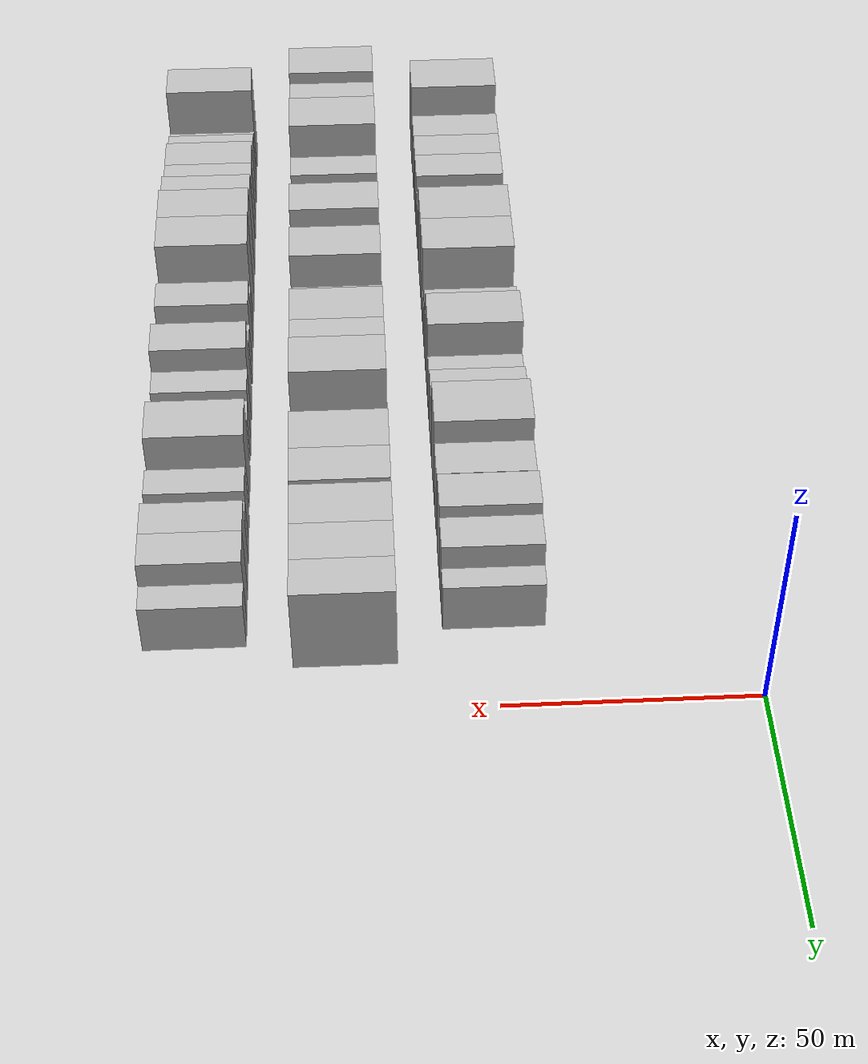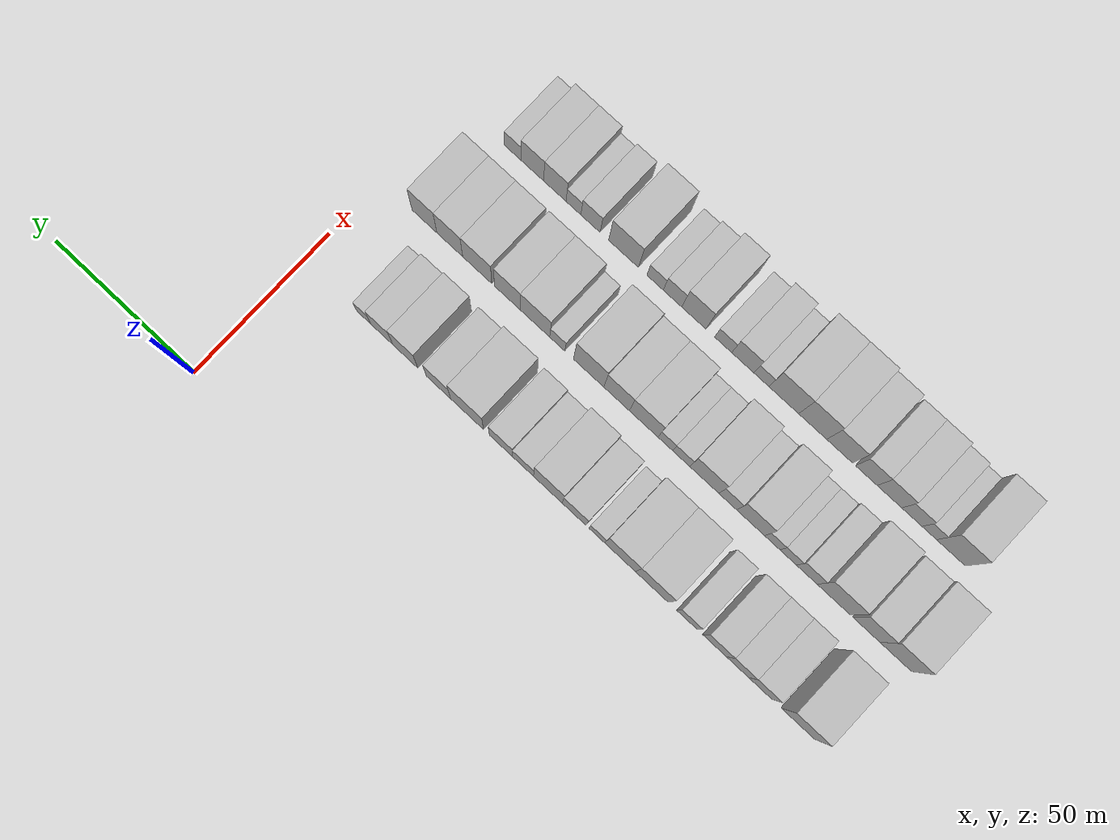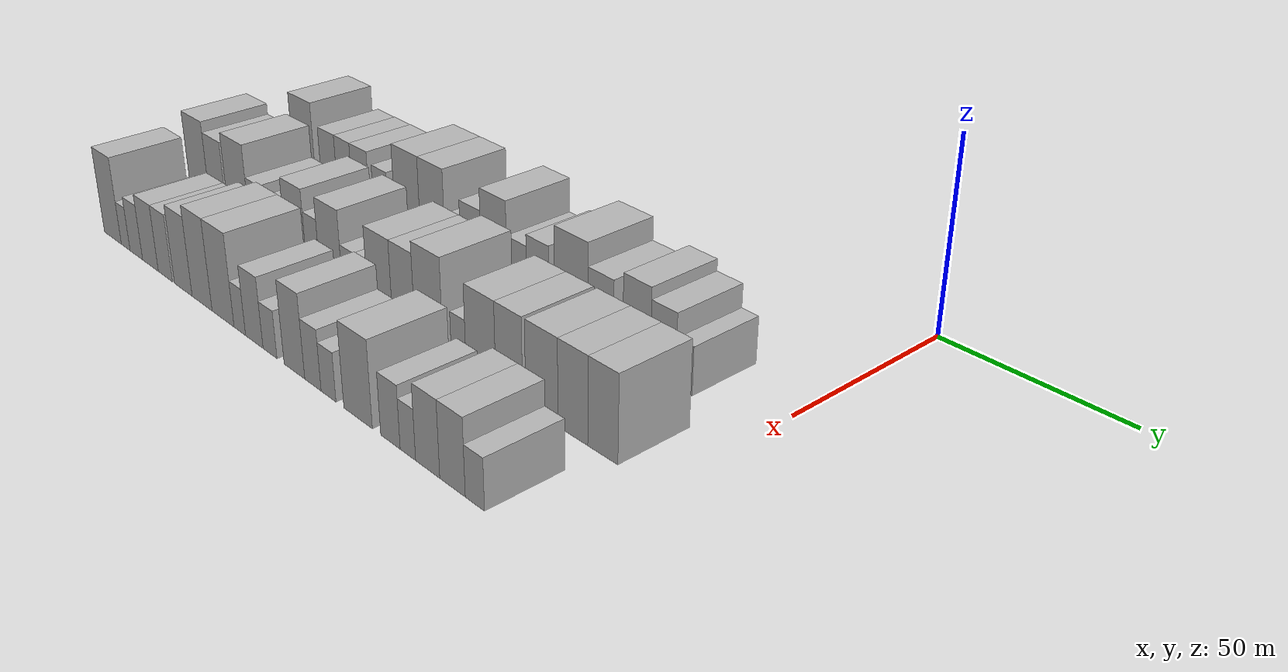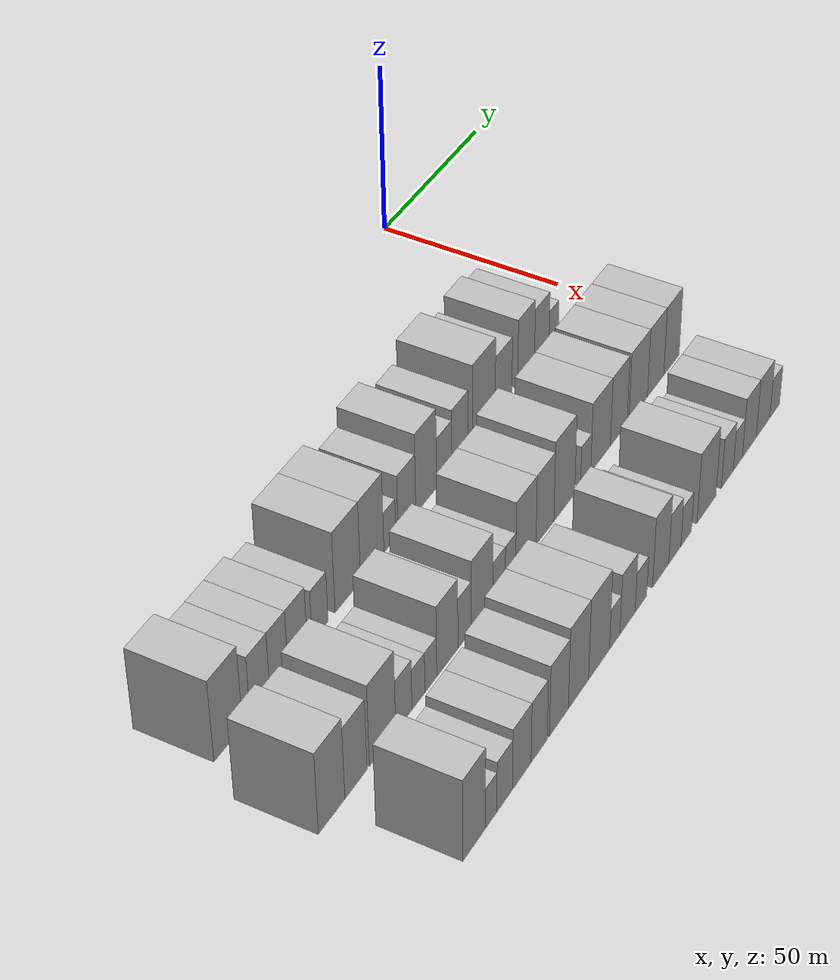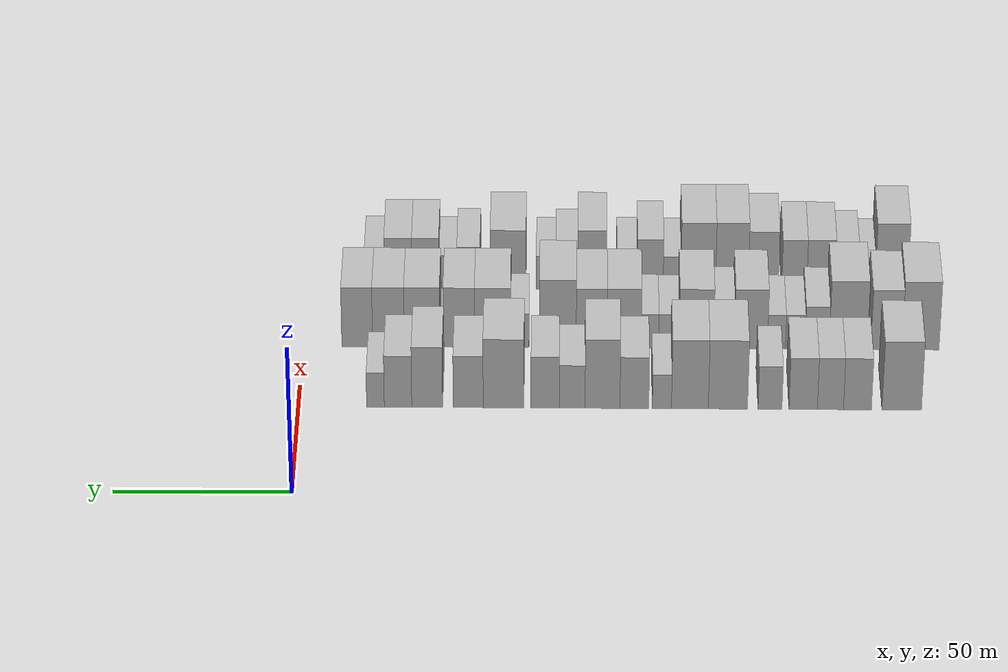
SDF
<sdf version="1.6">
 <world name="default">
  <model name="building_19">
   <static>1</static>
   <pose>50.0000 -171.7092 0 0.000000 0.000000 0.000000</pose>
   <link name="link">
    <pose>0 0 12.00 0 0 0</pose>
    <collision name="collision"><geometry><box><size>20.0000 11.2336 24.0000</size></box></geometry></collision>
    <visual name="visual">
     <cast_shadows>0</cast_shadows>
     <geometry><box><size>20.0000 11.2336 24.0000</size></box></geometry>
     <material>
      <script>
       <uri>model://HANNAS_wall/materials/scripts</uri>
       <uri>model://HANNAS_wall/materials/textures</uri>
       <name>vrc/HANNAS_wall</name>
      </script>
     </material>
    </visual>
   </link>
  </model>
  <model name="building_20">
   <static>1</static>
   <pose>50.0000 -159.1138 0 0.000000 0.000000 0.000000</pose>
   <link name="link">
    <pose>0 0 9.00 0 0 0</pose>
    <collision name="collision"><geometry><box><size>20.0000 7.9572 18.0000</size></box></geometry></collision>
    <visual name="visual">
     <cast_shadows>0</cast_shadows>
     <geometry><box><size>20.0000 7.9572 18.0000</size></box></geometry>
     <material>
      <script>
       <uri>model://HANNAS_wall/materials/scripts</uri>
       <uri>model://HANNAS_wall/materials/textures</uri>
       <name>vrc/HANNAS_wall</name>
      </script>
     </material>
    </visual>
   </link>
  </model>
  <model name="building_21">
   <static>1</static>
   <pose>50.0000 -151.4212 0 0.000000 0.000000 0.000000</pose>
   <link name="link">
    <pose>0 0 9.00 0 0 0</pose>
    <collision name="collision"><geometry><box><size>20.0000 7.4280 18.0000</size></box></geometry></collision>
    <visual name="visual">
     <cast_shadows>0</cast_shadows>
     <geometry><box><size>20.0000 7.4280 18.0000</size></box></geometry>
     <material>
      <script>
       <uri>model://HANNAS_wall/materials/scripts</uri>
       <uri>model://HANNAS_wall/materials/textures</uri>
       <name>vrc/HANNAS_wall</name>
      </script>
     </material>
    </visual>
   </link>
  </model>
  <model name="building_22">
   <static>1</static>
   <pose>50.0000 -143.6685 0 0.000000 0.000000 0.000000</pose>
   <link name="link">
    <pose>0 0 9.00 0 0 0</pose>
    <collision name="collision"><geometry><box><size>20.0000 8.0774 18.0000</size></box></geometry></collision>
    <visual name="visual">
     <cast_shadows>0</cast_shadows>
     <geometry><box><size>20.0000 8.0774 18.0000</size></box></geometry>
     <material>
      <script>
       <uri>model://HANNAS_wall/materials/scripts</uri>
       <uri>model://HANNAS_wall/materials/textures</uri>
       <name>vrc/HANNAS_wall</name>
      </script>
     </material>
    </visual>
   </link>
  </model>
  <model name="building_23">
   <static>1</static>
   <pose>50.0000 -134.2291 0 0.000000 0.000000 0.000000</pose>
   <link name="link">
    <pose>0 0 7.50 0 0 0</pose>
    <collision name="collision"><geometry><box><size>20.0000 6.8014 15.0000</size></box></geometry></collision>
    <visual name="visual">
     <cast_shadows>0</cast_shadows>
     <geometry><box><size>20.0000 6.8014 15.0000</size></box></geometry>
     <material>
      <script>
       <uri>model://HANNAS_wall/materials/scripts</uri>
       <uri>model://HANNAS_wall/materials/textures</uri>
       <name>vrc/HANNAS_wall</name>
      </script>
     </material>
    </visual>
   </link>
  </model>
  <model name="building_24">
   <static>1</static>
   <pose>50.0000 -122.2531 0 0.000000 0.000000 0.000000</pose>
   <link name="link">
    <pose>0 0 12.00 0 0 0</pose>
    <collision name="collision"><geometry><box><size>20.0000 11.1506 24.0000</size></box></geometry></collision>
    <visual name="visual">
     <cast_shadows>0</cast_shadows>
     <geometry><box><size>20.0000 11.1506 24.0000</size></box></geometry>
     <material>
      <script>
       <uri>model://HANNAS_wall/materials/scripts</uri>
       <uri>model://HANNAS_wall/materials/textures</uri>
       <name>vrc/HANNAS_wall</name>
      </script>
     </material>
    </visual>
   </link>
  </model>
  <model name="building_25">
   <static>1</static>
   <pose>50.0000 -111.4234 0 0.000000 0.000000 0.000000</pose>
   <link name="link">
    <pose>0 0 12.00 0 0 0</pose>
    <collision name="collision"><geometry><box><size>20.0000 10.5088 24.0000</size></box></geometry></collision>
    <visual name="visual">
     <cast_shadows>0</cast_shadows>
     <geometry><box><size>20.0000 10.5088 24.0000</size></box></geometry>
     <material>
      <script>
       <uri>model://HANNAS_wall/materials/scripts</uri>
       <uri>model://HANNAS_wall/materials/textures</uri>
       <name>vrc/HANNAS_wall</name>
      </script>
     </material>
    </visual>
   </link>
  </model>
  <model name="building_26">
   <static>1</static>
   <pose>50.0000 -103.4471 0 0.000000 0.000000 0.000000</pose>
   <link name="link">
    <pose>0 0 6.00 0 0 0</pose>
    <collision name="collision"><geometry><box><size>20.0000 5.4438 12.0000</size></box></geometry></collision>
    <visual name="visual">
     <cast_shadows>0</cast_shadows>
     <geometry><box><size>20.0000 5.4438 12.0000</size></box></geometry>
     <material>
      <script>
       <uri>model://HANNAS_wall/materials/scripts</uri>
       <uri>model://HANNAS_wall/materials/textures</uri>
       <name>vrc/HANNAS_wall</name>
      </script>
     </material>
    </visual>
   </link>
  </model>
  <model name="building_27">
   <static>1</static>
   <pose>50.0000 -95.6076 0 0.000000 0.000000 0.000000</pose>
   <link name="link">
    <pose>0 0 9.00 0 0 0</pose>
    <collision name="collision"><geometry><box><size>20.0000 8.2350 18.0000</size></box></geometry></collision>
    <visual name="visual">
     <cast_shadows>0</cast_shadows>
     <geometry><box><size>20.0000 8.2350 18.0000</size></box></geometry>
     <material>
      <script>
       <uri>model://HANNAS_wall/materials/scripts</uri>
       <uri>model://HANNAS_wall/materials/textures</uri>
       <name>vrc/HANNAS_wall</name>
      </script>
     </material>
    </visual>
   </link>
  </model>
  <model name="building_28">
   <static>1</static>
   <pose>50.0000 -86.5173 0 0.000000 0.000000 0.000000</pose>
   <link name="link">
    <pose>0 0 12.00 0 0 0</pose>
    <collision name="collision"><geometry><box><size>20.0000 9.9456 24.0000</size></box></geometry></collision>
    <visual name="visual">
     <cast_shadows>0</cast_shadows>
     <geometry><box><size>20.0000 9.9456 24.0000</size></box></geometry>
     <material>
      <script>
       <uri>model://HANNAS_wall/materials/scripts</uri>
       <uri>model://HANNAS_wall/materials/textures</uri>
       <name>vrc/HANNAS_wall</name>
      </script>
     </material>
    </visual>
   </link>
  </model>
  <model name="building_29">
   <static>1</static>
   <pose>50.0000 -77.8846 0 0.000000 0.000000 0.000000</pose>
   <link name="link">
    <pose>0 0 7.50 0 0 0</pose>
    <collision name="collision"><geometry><box><size>20.0000 7.3198 15.0000</size></box></geometry></collision>
    <visual name="visual">
     <cast_shadows>0</cast_shadows>
     <geometry><box><size>20.0000 7.3198 15.0000</size></box></geometry>
     <material>
      <script>
       <uri>model://HANNAS_wall/materials/scripts</uri>
       <uri>model://HANNAS_wall/materials/textures</uri>
       <name>vrc/HANNAS_wall</name>
      </script>
     </material>
    </visual>
   </link>
  </model>
  <model name="building_30">
   <static>1</static>
   <pose>50.0000 -70.1955 0 0.000000 0.000000 0.000000</pose>
   <link name="link">
    <pose>0 0 9.00 0 0 0</pose>
    <collision name="collision"><geometry><box><size>20.0000 8.0583 18.0000</size></box></geometry></collision>
    <visual name="visual">
     <cast_shadows>0</cast_shadows>
     <geometry><box><size>20.0000 8.0583 18.0000</size></box></geometry>
     <material>
      <script>
       <uri>model://HANNAS_wall/materials/scripts</uri>
       <uri>model://HANNAS_wall/materials/textures</uri>
       <name>vrc/HANNAS_wall</name>
      </script>
     </material>
    </visual>
   </link>
  </model>
  <model name="building_31">
   <static>1</static>
   <pose>50.0000 -58.3696 0 0.000000 0.000000 0.000000</pose>
   <link name="link">
    <pose>0 0 12.00 0 0 0</pose>
    <collision name="collision"><geometry><box><size>20.0000 11.5935 24.0000</size></box></geometry></collision>
    <visual name="visual">
     <cast_shadows>0</cast_shadows>
     <geometry><box><size>20.0000 11.5935 24.0000</size></box></geometry>
     <material>
      <script>
       <uri>model://HANNAS_wall/materials/scripts</uri>
       <uri>model://HANNAS_wall/materials/textures</uri>
       <name>vrc/HANNAS_wall</name>
      </script>
     </material>
    </visual>
   </link>
  </model>
  <model name="building_32">
   <static>1</static>
   <pose>50.0000 -48.3083 0 0.000000 0.000000 0.000000</pose>
   <link name="link">
    <pose>0 0 9.00 0 0 0</pose>
    <collision name="collision"><geometry><box><size>20.0000 8.5291 18.0000</size></box></geometry></collision>
    <visual name="visual">
     <cast_shadows>0</cast_shadows>
     <geometry><box><size>20.0000 8.5291 18.0000</size></box></geometry>
     <material>
      <script>
       <uri>model://HANNAS_wall/materials/scripts</uri>
       <uri>model://HANNAS_wall/materials/textures</uri>
       <name>vrc/HANNAS_wall</name>
      </script>
     </material>
    </visual>
   </link>
  </model>
  <model name="building_33">
   <static>1</static>
   <pose>50.0000 -36.6462 0 0.000000 0.000000 0.000000</pose>
   <link name="link">
    <pose>0 0 10.50 0 0 0</pose>
    <collision name="collision"><geometry><box><size>20.0000 8.7952 21.0000</size></box></geometry></collision>
    <visual name="visual">
     <cast_shadows>0</cast_shadows>
     <geometry><box><size>20.0000 8.7952 21.0000</size></box></geometry>
     <material>
      <script>
       <uri>model://HANNAS_wall/materials/scripts</uri>
       <uri>model://HANNAS_wall/materials/textures</uri>
       <name>vrc/HANNAS_wall</name>
      </script>
     </material>
    </visual>
   </link>
  </model>
  <model name="building_34">
   <static>1</static>
   <pose>50.0000 -28.3335 0 0.000000 0.000000 0.000000</pose>
   <link name="link">
    <pose>0 0 9.00 0 0 0</pose>
    <collision name="collision"><geometry><box><size>20.0000 7.8303 18.0000</size></box></geometry></collision>
    <visual name="visual">
     <cast_shadows>0</cast_shadows>
     <geometry><box><size>20.0000 7.8303 18.0000</size></box></geometry>
     <material>
      <script>
       <uri>model://HANNAS_wall/materials/scripts</uri>
       <uri>model://HANNAS_wall/materials/textures</uri>
       <name>vrc/HANNAS_wall</name>
      </script>
     </material>
    </visual>
   </link>
  </model>
  <model name="building_35">
   <static>1</static>
   <pose>50.0000 -21.9060 0 0.000000 0.000000 0.000000</pose>
   <link name="link">
    <pose>0 0 6.00 0 0 0</pose>
    <collision name="collision"><geometry><box><size>20.0000 5.0245 12.0000</size></box></geometry></collision>
    <visual name="visual">
     <cast_shadows>0</cast_shadows>
     <geometry><box><size>20.0000 5.0245 12.0000</size></box></geometry>
     <material>
      <script>
       <uri>model://HANNAS_wall/materials/scripts</uri>
       <uri>model://HANNAS_wall/materials/textures</uri>
       <name>vrc/HANNAS_wall</name>
      </script>
     </material>
    </visual>
   </link>
  </model>
  <model name="building_93">
   <static>1</static>
   <pose>79.0000 -178.6036 0 0.000000 0.000000 0.000000</pose>
   <link name="link">
    <pose>0 0 12.00 0 0 0</pose>
    <collision name="collision"><geometry><box><size>20.0000 10.6331 24.0000</size></box></geometry></collision>
    <visual name="visual">
     <cast_shadows>0</cast_shadows>
     <geometry><box><size>20.0000 10.6331 24.0000</size></box></geometry>
     <material>
      <script>
       <uri>model://HANNAS_wall/materials/scripts</uri>
       <uri>model://HANNAS_wall/materials/textures</uri>
       <name>vrc/HANNAS_wall</name>
      </script>
     </material>
    </visual>
   </link>
  </model>
  <model name="building_94">
   <static>1</static>
   <pose>79.0000 -168.7623 0 0.000000 0.000000 0.000000</pose>
   <link name="link">
    <pose>0 0 10.50 0 0 0</pose>
    <collision name="collision"><geometry><box><size>20.0000 9.0495 21.0000</size></box></geometry></collision>
    <visual name="visual">
     <cast_shadows>0</cast_shadows>
     <geometry><box><size>20.0000 9.0495 21.0000</size></box></geometry>
     <material>
      <script>
       <uri>model://HANNAS_wall/materials/scripts</uri>
       <uri>model://HANNAS_wall/materials/textures</uri>
       <name>vrc/HANNAS_wall</name>
      </script>
     </material>
    </visual>
   </link>
  </model>
  <model name="building_95">
   <static>1</static>
   <pose>79.0000 -157.7104 0 0.000000 0.000000 0.000000</pose>
   <link name="link">
    <pose>0 0 12.00 0 0 0</pose>
    <collision name="collision"><geometry><box><size>20.0000 11.0544 24.0000</size></box></geometry></collision>
    <visual name="visual">
     <cast_shadows>0</cast_shadows>
     <geometry><box><size>20.0000 11.0544 24.0000</size></box></geometry>
     <material>
      <script>
       <uri>model://HANNAS_wall/materials/scripts</uri>
       <uri>model://HANNAS_wall/materials/textures</uri>
       <name>vrc/HANNAS_wall</name>
      </script>
     </material>
    </visual>
   </link>
  </model>
  <model name="building_96">
   <static>1</static>
   <pose>79.0000 -148.6943 0 0.000000 0.000000 0.000000</pose>
   <link name="link">
    <pose>0 0 7.50 0 0 0</pose>
    <collision name="collision"><geometry><box><size>20.0000 6.9778 15.0000</size></box></geometry></collision>
    <visual name="visual">
     <cast_shadows>0</cast_shadows>
     <geometry><box><size>20.0000 6.9778 15.0000</size></box></geometry>
     <material>
      <script>
       <uri>model://HANNAS_wall/materials/scripts</uri>
       <uri>model://HANNAS_wall/materials/textures</uri>
       <name>vrc/HANNAS_wall</name>
      </script>
     </material>
    </visual>
   </link>
  </model>
  <model name="building_97">
   <static>1</static>
   <pose>79.0000 -142.3757 0 0.000000 0.000000 0.000000</pose>
   <link name="link">
    <pose>0 0 6.00 0 0 0</pose>
    <collision name="collision"><geometry><box><size>20.0000 5.6594 12.0000</size></box></geometry></collision>
    <visual name="visual">
     <cast_shadows>0</cast_shadows>
     <geometry><box><size>20.0000 5.6594 12.0000</size></box></geometry>
     <material>
      <script>
       <uri>model://HANNAS_wall/materials/scripts</uri>
       <uri>model://HANNAS_wall/materials/textures</uri>
       <name>vrc/HANNAS_wall</name>
      </script>
     </material>
    </visual>
   </link>
  </model>
  <model name="building_98">
   <static>1</static>
   <pose>79.0000 -136.9511 0 0.000000 0.000000 0.000000</pose>
   <link name="link">
    <pose>0 0 6.00 0 0 0</pose>
    <collision name="collision"><geometry><box><size>20.0000 5.1898 12.0000</size></box></geometry></collision>
    <visual name="visual">
     <cast_shadows>0</cast_shadows>
     <geometry><box><size>20.0000 5.1898 12.0000</size></box></geometry>
     <material>
      <script>
       <uri>model://HANNAS_wall/materials/scripts</uri>
       <uri>model://HANNAS_wall/materials/textures</uri>
       <name>vrc/HANNAS_wall</name>
      </script>
     </material>
    </visual>
   </link>
  </model>
  <model name="building_99">
   <static>1</static>
   <pose>79.0000 -129.5886 0 0.000000 0.000000 0.000000</pose>
   <link name="link">
    <pose>0 0 10.50 0 0 0</pose>
    <collision name="collision"><geometry><box><size>20.0000 9.5352 21.0000</size></box></geometry></collision>
    <visual name="visual">
     <cast_shadows>0</cast_shadows>
     <geometry><box><size>20.0000 9.5352 21.0000</size></box></geometry>
     <material>
      <script>
       <uri>model://HANNAS_wall/materials/scripts</uri>
       <uri>model://HANNAS_wall/materials/textures</uri>
       <name>vrc/HANNAS_wall</name>
      </script>
     </material>
    </visual>
   </link>
  </model>
  <model name="building_100">
   <static>1</static>
   <pose>79.0000 -121.7879 0 0.000000 0.000000 0.000000</pose>
   <link name="link">
    <pose>0 0 7.50 0 0 0</pose>
    <collision name="collision"><geometry><box><size>20.0000 6.0662 15.0000</size></box></geometry></collision>
    <visual name="visual">
     <cast_shadows>0</cast_shadows>
     <geometry><box><size>20.0000 6.0662 15.0000</size></box></geometry>
     <material>
      <script>
       <uri>model://HANNAS_wall/materials/scripts</uri>
       <uri>model://HANNAS_wall/materials/textures</uri>
       <name>vrc/HANNAS_wall</name>
      </script>
     </material>
    </visual>
   </link>
  </model>
  <model name="building_101">
   <static>1</static>
   <pose>79.0000 -113.7638 0 0.000000 0.000000 0.000000</pose>
   <link name="link">
    <pose>0 0 10.50 0 0 0</pose>
    <collision name="collision"><geometry><box><size>20.0000 9.9820 21.0000</size></box></geometry></collision>
    <visual name="visual">
     <cast_shadows>0</cast_shadows>
     <geometry><box><size>20.0000 9.9820 21.0000</size></box></geometry>
     <material>
      <script>
       <uri>model://HANNAS_wall/materials/scripts</uri>
       <uri>model://HANNAS_wall/materials/textures</uri>
       <name>vrc/HANNAS_wall</name>
      </script>
     </material>
    </visual>
   </link>
  </model>
  <model name="building_102">
   <static>1</static>
   <pose>79.0000 -105.8177 0 0.000000 0.000000 0.000000</pose>
   <link name="link">
    <pose>0 0 6.00 0 0 0</pose>
    <collision name="collision"><geometry><box><size>20.0000 5.9101 12.0000</size></box></geometry></collision>
    <visual name="visual">
     <cast_shadows>0</cast_shadows>
     <geometry><box><size>20.0000 5.9101 12.0000</size></box></geometry>
     <material>
      <script>
       <uri>model://HANNAS_wall/materials/scripts</uri>
       <uri>model://HANNAS_wall/materials/textures</uri>
       <name>vrc/HANNAS_wall</name>
      </script>
     </material>
    </visual>
   </link>
  </model>
  <model name="building_103">
   <static>1</static>
   <pose>79.0000 -100.3531 0 0.000000 0.000000 0.000000</pose>
   <link name="link">
    <pose>0 0 6.00 0 0 0</pose>
    <collision name="collision"><geometry><box><size>20.0000 5.0191 12.0000</size></box></geometry></collision>
    <visual name="visual">
     <cast_shadows>0</cast_shadows>
     <geometry><box><size>20.0000 5.0191 12.0000</size></box></geometry>
     <material>
      <script>
       <uri>model://HANNAS_wall/materials/scripts</uri>
       <uri>model://HANNAS_wall/materials/textures</uri>
       <name>vrc/HANNAS_wall</name>
      </script>
     </material>
    </visual>
   </link>
  </model>
  <model name="building_104">
   <static>1</static>
   <pose>79.0000 -92.8733 0 0.000000 0.000000 0.000000</pose>
   <link name="link">
    <pose>0 0 10.50 0 0 0</pose>
    <collision name="collision"><geometry><box><size>20.0000 9.9406 21.0000</size></box></geometry></collision>
    <visual name="visual">
     <cast_shadows>0</cast_shadows>
     <geometry><box><size>20.0000 9.9406 21.0000</size></box></geometry>
     <material>
      <script>
       <uri>model://HANNAS_wall/materials/scripts</uri>
       <uri>model://HANNAS_wall/materials/textures</uri>
       <name>vrc/HANNAS_wall</name>
      </script>
     </material>
    </visual>
   </link>
  </model>
  <model name="building_105">
   <static>1</static>
   <pose>79.0000 -83.4567 0 0.000000 0.000000 0.000000</pose>
   <link name="link">
    <pose>0 0 10.50 0 0 0</pose>
    <collision name="collision"><geometry><box><size>20.0000 8.8926 21.0000</size></box></geometry></collision>
    <visual name="visual">
     <cast_shadows>0</cast_shadows>
     <geometry><box><size>20.0000 8.8926 21.0000</size></box></geometry>
     <material>
      <script>
       <uri>model://HANNAS_wall/materials/scripts</uri>
       <uri>model://HANNAS_wall/materials/textures</uri>
       <name>vrc/HANNAS_wall</name>
      </script>
     </material>
    </visual>
   </link>
  </model>
  <model name="building_106">
   <static>1</static>
   <pose>79.0000 -73.7061 0 0.000000 0.000000 0.000000</pose>
   <link name="link">
    <pose>0 0 12.00 0 0 0</pose>
    <collision name="collision"><geometry><box><size>20.0000 10.6085 24.0000</size></box></geometry></collision>
    <visual name="visual">
     <cast_shadows>0</cast_shadows>
     <geometry><box><size>20.0000 10.6085 24.0000</size></box></geometry>
     <material>
      <script>
       <uri>model://HANNAS_wall/materials/scripts</uri>
       <uri>model://HANNAS_wall/materials/textures</uri>
       <name>vrc/HANNAS_wall</name>
      </script>
     </material>
    </visual>
   </link>
  </model>
  <model name="building_107">
   <static>1</static>
   <pose>79.0000 -62.7405 0 0.000000 0.000000 0.000000</pose>
   <link name="link">
    <pose>0 0 6.00 0 0 0</pose>
    <collision name="collision"><geometry><box><size>20.0000 5.3228 12.0000</size></box></geometry></collision>
    <visual name="visual">
     <cast_shadows>0</cast_shadows>
     <geometry><box><size>20.0000 5.3228 12.0000</size></box></geometry>
     <material>
      <script>
       <uri>model://HANNAS_wall/materials/scripts</uri>
       <uri>model://HANNAS_wall/materials/textures</uri>
       <name>vrc/HANNAS_wall</name>
      </script>
     </material>
    </visual>
   </link>
  </model>
  <model name="building_108">
   <static>1</static>
   <pose>79.0000 -54.8743 0 0.000000 0.000000 0.000000</pose>
   <link name="link">
    <pose>0 0 10.50 0 0 0</pose>
    <collision name="collision"><geometry><box><size>20.0000 10.4095 21.0000</size></box></geometry></collision>
    <visual name="visual">
     <cast_shadows>0</cast_shadows>
     <geometry><box><size>20.0000 10.4095 21.0000</size></box></geometry>
     <material>
      <script>
       <uri>model://HANNAS_wall/materials/scripts</uri>
       <uri>model://HANNAS_wall/materials/textures</uri>
       <name>vrc/HANNAS_wall</name>
      </script>
     </material>
    </visual>
   </link>
  </model>
  <model name="building_109">
   <static>1</static>
   <pose>79.0000 -45.1553 0 0.000000 0.000000 0.000000</pose>
   <link name="link">
    <pose>0 0 10.50 0 0 0</pose>
    <collision name="collision"><geometry><box><size>20.0000 9.0287 21.0000</size></box></geometry></collision>
    <visual name="visual">
     <cast_shadows>0</cast_shadows>
     <geometry><box><size>20.0000 9.0287 21.0000</size></box></geometry>
     <material>
      <script>
       <uri>model://HANNAS_wall/materials/scripts</uri>
       <uri>model://HANNAS_wall/materials/textures</uri>
       <name>vrc/HANNAS_wall</name>
      </script>
     </material>
    </visual>
   </link>
  </model>
  <model name="building_110">
   <static>1</static>
   <pose>79.0000 -34.4933 0 0.000000 0.000000 0.000000</pose>
   <link name="link">
    <pose>0 0 10.50 0 0 0</pose>
    <collision name="collision"><geometry><box><size>20.0000 10.2953 21.0000</size></box></geometry></collision>
    <visual name="visual">
     <cast_shadows>0</cast_shadows>
     <geometry><box><size>20.0000 10.2953 21.0000</size></box></geometry>
     <material>
      <script>
       <uri>model://HANNAS_wall/materials/scripts</uri>
       <uri>model://HANNAS_wall/materials/textures</uri>
       <name>vrc/HANNAS_wall</name>
      </script>
     </material>
    </visual>
   </link>
  </model>
  <model name="building_111">
   <static>1</static>
   <pose>79.0000 -24.7550 0 0.000000 0.000000 0.000000</pose>
   <link name="link">
    <pose>0 0 10.50 0 0 0</pose>
    <collision name="collision"><geometry><box><size>20.0000 9.1813 21.0000</size></box></geometry></collision>
    <visual name="visual">
     <cast_shadows>0</cast_shadows>
     <geometry><box><size>20.0000 9.1813 21.0000</size></box></geometry>
     <material>
      <script>
       <uri>model://HANNAS_wall/materials/scripts</uri>
       <uri>model://HANNAS_wall/materials/textures</uri>
       <name>vrc/HANNAS_wall</name>
      </script>
     </material>
    </visual>
   </link>
  </model>
  <model name="building_112">
   <static>1</static>
   <pose>79.0000 -15.7256 0 0.000000 0.000000 0.000000</pose>
   <link name="link">
    <pose>0 0 10.50 0 0 0</pose>
    <collision name="collision"><geometry><box><size>20.0000 8.8775 21.0000</size></box></geometry></collision>
    <visual name="visual">
     <cast_shadows>0</cast_shadows>
     <geometry><box><size>20.0000 8.8775 21.0000</size></box></geometry>
     <material>
      <script>
       <uri>model://HANNAS_wall/materials/scripts</uri>
       <uri>model://HANNAS_wall/materials/textures</uri>
       <name>vrc/HANNAS_wall</name>
      </script>
     </material>
    </visual>
   </link>
  </model>
  <model name="building_171">
   <static>1</static>
   <pose>108.0000 -171.5350 0 0.000000 0.000000 0.000000</pose>
   <link name="link">
    <pose>0 0 12.00 0 0 0</pose>
    <collision name="collision"><geometry><box><size>20.0000 9.6240 24.0000</size></box></geometry></collision>
    <visual name="visual">
     <cast_shadows>0</cast_shadows>
     <geometry><box><size>20.0000 9.6240 24.0000</size></box></geometry>
     <material>
      <script>
       <uri>model://HANNAS_wall/materials/scripts</uri>
       <uri>model://HANNAS_wall/materials/textures</uri>
       <name>vrc/HANNAS_wall</name>
      </script>
     </material>
    </visual>
   </link>
  </model>
  <model name="building_172">
   <static>1</static>
   <pose>108.0000 -164.2879 0 0.000000 0.000000 0.000000</pose>
   <link name="link">
    <pose>0 0 6.00 0 0 0</pose>
    <collision name="collision"><geometry><box><size>20.0000 4.8702 12.0000</size></box></geometry></collision>
    <visual name="visual">
     <cast_shadows>0</cast_shadows>
     <geometry><box><size>20.0000 4.8702 12.0000</size></box></geometry>
     <material>
      <script>
       <uri>model://HANNAS_wall/materials/scripts</uri>
       <uri>model://HANNAS_wall/materials/textures</uri>
       <name>vrc/HANNAS_wall</name>
      </script>
     </material>
    </visual>
   </link>
  </model>
  <model name="building_173">
   <static>1</static>
   <pose>108.0000 -158.4342 0 0.000000 0.000000 0.000000</pose>
   <link name="link">
    <pose>0 0 7.50 0 0 0</pose>
    <collision name="collision"><geometry><box><size>20.0000 6.8372 15.0000</size></box></geometry></collision>
    <visual name="visual">
     <cast_shadows>0</cast_shadows>
     <geometry><box><size>20.0000 6.8372 15.0000</size></box></geometry>
     <material>
      <script>
       <uri>model://HANNAS_wall/materials/scripts</uri>
       <uri>model://HANNAS_wall/materials/textures</uri>
       <name>vrc/HANNAS_wall</name>
      </script>
     </material>
    </visual>
   </link>
  </model>
  <model name="building_174">
   <static>1</static>
   <pose>108.0000 -150.8537 0 0.000000 0.000000 0.000000</pose>
   <link name="link">
    <pose>0 0 9.00 0 0 0</pose>
    <collision name="collision"><geometry><box><size>20.0000 8.3237 18.0000</size></box></geometry></collision>
    <visual name="visual">
     <cast_shadows>0</cast_shadows>
     <geometry><box><size>20.0000 8.3237 18.0000</size></box></geometry>
     <material>
      <script>
       <uri>model://HANNAS_wall/materials/scripts</uri>
       <uri>model://HANNAS_wall/materials/textures</uri>
       <name>vrc/HANNAS_wall</name>
      </script>
     </material>
    </visual>
   </link>
  </model>
  <model name="building_175">
   <static>1</static>
   <pose>108.0000 -143.0219 0 0.000000 0.000000 0.000000</pose>
   <link name="link">
    <pose>0 0 9.00 0 0 0</pose>
    <collision name="collision"><geometry><box><size>20.0000 7.3398 18.0000</size></box></geometry></collision>
    <visual name="visual">
     <cast_shadows>0</cast_shadows>
     <geometry><box><size>20.0000 7.3398 18.0000</size></box></geometry>
     <material>
      <script>
       <uri>model://HANNAS_wall/materials/scripts</uri>
       <uri>model://HANNAS_wall/materials/textures</uri>
       <name>vrc/HANNAS_wall</name>
      </script>
     </material>
    </visual>
   </link>
  </model>
  <model name="building_176">
   <static>1</static>
   <pose>108.0000 -133.9339 0 0.000000 0.000000 0.000000</pose>
   <link name="link">
    <pose>0 0 10.50 0 0 0</pose>
    <collision name="collision"><geometry><box><size>20.0000 8.8361 21.0000</size></box></geometry></collision>
    <visual name="visual">
     <cast_shadows>0</cast_shadows>
     <geometry><box><size>20.0000 8.8361 21.0000</size></box></geometry>
     <material>
      <script>
       <uri>model://HANNAS_wall/materials/scripts</uri>
       <uri>model://HANNAS_wall/materials/textures</uri>
       <name>vrc/HANNAS_wall</name>
      </script>
     </material>
    </visual>
   </link>
  </model>
  <model name="building_177">
   <static>1</static>
   <pose>108.0000 -124.7144 0 0.000000 0.000000 0.000000</pose>
   <link name="link">
    <pose>0 0 12.00 0 0 0</pose>
    <collision name="collision"><geometry><box><size>20.0000 9.6029 24.0000</size></box></geometry></collision>
    <visual name="visual">
     <cast_shadows>0</cast_shadows>
     <geometry><box><size>20.0000 9.6029 24.0000</size></box></geometry>
     <material>
      <script>
       <uri>model://HANNAS_wall/materials/scripts</uri>
       <uri>model://HANNAS_wall/materials/textures</uri>
       <name>vrc/HANNAS_wall</name>
      </script>
     </material>
    </visual>
   </link>
  </model>
  <model name="building_178">
   <static>1</static>
   <pose>108.0000 -114.8118 0 0.000000 0.000000 0.000000</pose>
   <link name="link">
    <pose>0 0 12.00 0 0 0</pose>
    <collision name="collision"><geometry><box><size>20.0000 10.2023 24.0000</size></box></geometry></collision>
    <visual name="visual">
     <cast_shadows>0</cast_shadows>
     <geometry><box><size>20.0000 10.2023 24.0000</size></box></geometry>
     <material>
      <script>
       <uri>model://HANNAS_wall/materials/scripts</uri>
       <uri>model://HANNAS_wall/materials/textures</uri>
       <name>vrc/HANNAS_wall</name>
      </script>
     </material>
    </visual>
   </link>
  </model>
  <model name="building_179">
   <static>1</static>
   <pose>108.0000 -107.1256 0 0.000000 0.000000 0.000000</pose>
   <link name="link">
    <pose>0 0 6.00 0 0 0</pose>
    <collision name="collision"><geometry><box><size>20.0000 5.1703 12.0000</size></box></geometry></collision>
    <visual name="visual">
     <cast_shadows>0</cast_shadows>
     <geometry><box><size>20.0000 5.1703 12.0000</size></box></geometry>
     <material>
      <script>
       <uri>model://HANNAS_wall/materials/scripts</uri>
       <uri>model://HANNAS_wall/materials/textures</uri>
       <name>vrc/HANNAS_wall</name>
      </script>
     </material>
    </visual>
   </link>
  </model>
  <model name="building_180">
   <static>1</static>
   <pose>108.0000 -100.7117 0 0.000000 0.000000 0.000000</pose>
   <link name="link">
    <pose>0 0 9.00 0 0 0</pose>
    <collision name="collision"><geometry><box><size>20.0000 7.6574 18.0000</size></box></geometry></collision>
    <visual name="visual">
     <cast_shadows>0</cast_shadows>
     <geometry><box><size>20.0000 7.6574 18.0000</size></box></geometry>
     <material>
      <script>
       <uri>model://HANNAS_wall/materials/scripts</uri>
       <uri>model://HANNAS_wall/materials/textures</uri>
       <name>vrc/HANNAS_wall</name>
      </script>
     </material>
    </visual>
   </link>
  </model>
  <model name="building_181">
   <static>1</static>
   <pose>108.0000 -93.9133 0 0.000000 0.000000 0.000000</pose>
   <link name="link">
    <pose>0 0 6.00 0 0 0</pose>
    <collision name="collision"><geometry><box><size>20.0000 5.9395 12.0000</size></box></geometry></collision>
    <visual name="visual">
     <cast_shadows>0</cast_shadows>
     <geometry><box><size>20.0000 5.9395 12.0000</size></box></geometry>
     <material>
      <script>
       <uri>model://HANNAS_wall/materials/scripts</uri>
       <uri>model://HANNAS_wall/materials/textures</uri>
       <name>vrc/HANNAS_wall</name>
      </script>
     </material>
    </visual>
   </link>
  </model>
  <model name="building_182">
   <static>1</static>
   <pose>108.0000 -83.7237 0 0.000000 0.000000 0.000000</pose>
   <link name="link">
    <pose>0 0 10.50 0 0 0</pose>
    <collision name="collision"><geometry><box><size>20.0000 8.4398 21.0000</size></box></geometry></collision>
    <visual name="visual">
     <cast_shadows>0</cast_shadows>
     <geometry><box><size>20.0000 8.4398 21.0000</size></box></geometry>
     <material>
      <script>
       <uri>model://HANNAS_wall/materials/scripts</uri>
       <uri>model://HANNAS_wall/materials/textures</uri>
       <name>vrc/HANNAS_wall</name>
      </script>
     </material>
    </visual>
   </link>
  </model>
  <model name="building_183">
   <static>1</static>
   <pose>108.0000 -76.2719 0 0.000000 0.000000 0.000000</pose>
   <link name="link">
    <pose>0 0 7.50 0 0 0</pose>
    <collision name="collision"><geometry><box><size>20.0000 6.4638 15.0000</size></box></geometry></collision>
    <visual name="visual">
     <cast_shadows>0</cast_shadows>
     <geometry><box><size>20.0000 6.4638 15.0000</size></box></geometry>
     <material>
      <script>
       <uri>model://HANNAS_wall/materials/scripts</uri>
       <uri>model://HANNAS_wall/materials/textures</uri>
       <name>vrc/HANNAS_wall</name>
      </script>
     </material>
    </visual>
   </link>
  </model>
  <model name="building_184">
   <static>1</static>
   <pose>108.0000 -70.1689 0 0.000000 0.000000 0.000000</pose>
   <link name="link">
    <pose>0 0 6.00 0 0 0</pose>
    <collision name="collision"><geometry><box><size>20.0000 5.7422 12.0000</size></box></geometry></collision>
    <visual name="visual">
     <cast_shadows>0</cast_shadows>
     <geometry><box><size>20.0000 5.7422 12.0000</size></box></geometry>
     <material>
      <script>
       <uri>model://HANNAS_wall/materials/scripts</uri>
       <uri>model://HANNAS_wall/materials/textures</uri>
       <name>vrc/HANNAS_wall</name>
      </script>
     </material>
    </visual>
   </link>
  </model>
  <model name="building_185">
   <static>1</static>
   <pose>108.0000 -59.0575 0 0.000000 0.000000 0.000000</pose>
   <link name="link">
    <pose>0 0 10.50 0 0 0</pose>
    <collision name="collision"><geometry><box><size>20.0000 10.4807 21.0000</size></box></geometry></collision>
    <visual name="visual">
     <cast_shadows>0</cast_shadows>
     <geometry><box><size>20.0000 10.4807 21.0000</size></box></geometry>
     <material>
      <script>
       <uri>model://HANNAS_wall/materials/scripts</uri>
       <uri>model://HANNAS_wall/materials/textures</uri>
       <name>vrc/HANNAS_wall</name>
      </script>
     </material>
    </visual>
   </link>
  </model>
  <model name="building_186">
   <static>1</static>
   <pose>108.0000 -47.4236 0 0.000000 0.000000 0.000000</pose>
   <link name="link">
    <pose>0 0 7.50 0 0 0</pose>
    <collision name="collision"><geometry><box><size>20.0000 6.7871 15.0000</size></box></geometry></collision>
    <visual name="visual">
     <cast_shadows>0</cast_shadows>
     <geometry><box><size>20.0000 6.7871 15.0000</size></box></geometry>
     <material>
      <script>
       <uri>model://HANNAS_wall/materials/scripts</uri>
       <uri>model://HANNAS_wall/materials/textures</uri>
       <name>vrc/HANNAS_wall</name>
      </script>
     </material>
    </visual>
   </link>
  </model>
  <model name="building_187">
   <static>1</static>
   <pose>108.0000 -41.4118 0 0.000000 0.000000 0.000000</pose>
   <link name="link">
    <pose>0 0 6.00 0 0 0</pose>
    <collision name="collision"><geometry><box><size>20.0000 5.2366 12.0000</size></box></geometry></collision>
    <visual name="visual">
     <cast_shadows>0</cast_shadows>
     <geometry><box><size>20.0000 5.2366 12.0000</size></box></geometry>
     <material>
      <script>
       <uri>model://HANNAS_wall/materials/scripts</uri>
       <uri>model://HANNAS_wall/materials/textures</uri>
       <name>vrc/HANNAS_wall</name>
      </script>
     </material>
    </visual>
   </link>
  </model>
  <model name="building_188">
   <static>1</static>
   <pose>108.0000 -34.8072 0 0.000000 0.000000 0.000000</pose>
   <link name="link">
    <pose>0 0 9.00 0 0 0</pose>
    <collision name="collision"><geometry><box><size>20.0000 7.9726 18.0000</size></box></geometry></collision>
    <visual name="visual">
     <cast_shadows>0</cast_shadows>
     <geometry><box><size>20.0000 7.9726 18.0000</size></box></geometry>
     <material>
      <script>
       <uri>model://HANNAS_wall/materials/scripts</uri>
       <uri>model://HANNAS_wall/materials/textures</uri>
       <name>vrc/HANNAS_wall</name>
      </script>
     </material>
    </visual>
   </link>
  </model>
  <model name="building_189">
   <static>1</static>
   <pose>108.0000 -26.7733 0 0.000000 0.000000 0.000000</pose>
   <link name="link">
    <pose>0 0 9.00 0 0 0</pose>
    <collision name="collision"><geometry><box><size>20.0000 8.0953 18.0000</size></box></geometry></collision>
    <visual name="visual">
     <cast_shadows>0</cast_shadows>
     <geometry><box><size>20.0000 8.0953 18.0000</size></box></geometry>
     <material>
      <script>
       <uri>model://HANNAS_wall/materials/scripts</uri>
       <uri>model://HANNAS_wall/materials/textures</uri>
       <name>vrc/HANNAS_wall</name>
      </script>
     </material>
    </visual>
   </link>
  </model>
  <model name="building_190">
   <static>1</static>
   <pose>108.0000 -19.7778 0 0.000000 0.000000 0.000000</pose>
   <link name="link">
    <pose>0 0 6.00 0 0 0</pose>
    <collision name="collision"><geometry><box><size>20.0000 5.8957 12.0000</size></box></geometry></collision>
    <visual name="visual">
     <cast_shadows>0</cast_shadows>
     <geometry><box><size>20.0000 5.8957 12.0000</size></box></geometry>
     <material>
      <script>
       <uri>model://HANNAS_wall/materials/scripts</uri>
       <uri>model://HANNAS_wall/materials/textures</uri>
       <name>vrc/HANNAS_wall</name>
      </script>
     </material>
    </visual>
   </link>
  </model>
 </world>
</sdf>
